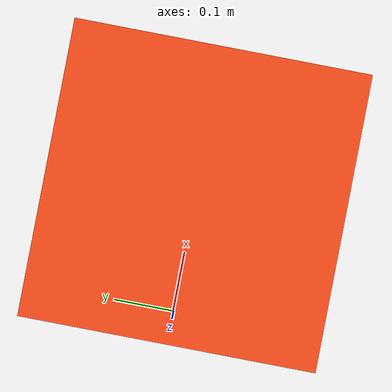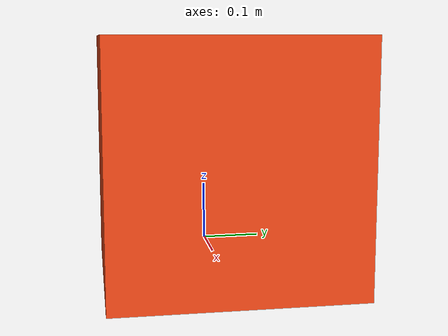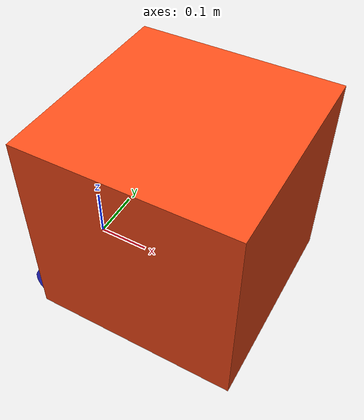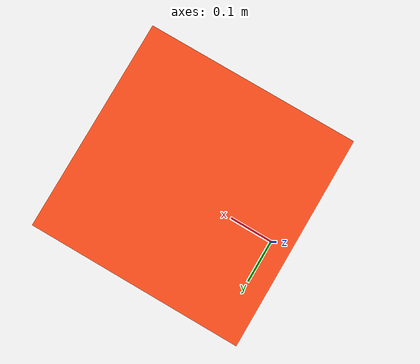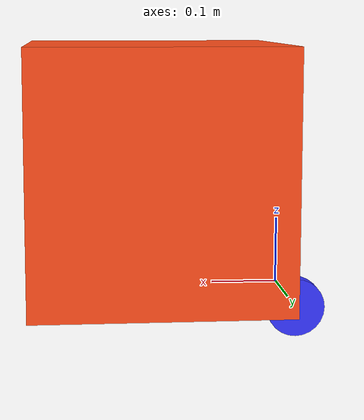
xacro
<?xml version="1.0"?>
<robot xmlns:xacro="http://www.ros.org/wiki/xacro"  name="robot">

    <xacro:arg name="use_ros2_control" default="true"/>
    <xacro:arg name="sim_mode" default="false"/>

    <xacro:include filename="robot_core.xacro" />

    <xacro:if value="$(arg use_ros2_control)">
        <xacro:include filename="ros2_control.xacro" />
    </xacro:if>

</robot>

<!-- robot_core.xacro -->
<robot xmlns:xacro="http://www.ros.org/wiki/xacro" >

    <xacro:include filename="inertial_macros.xacro"/>

    <xacro:property name="chassis_length" value="0.38"/>
    <xacro:property name="chassis_width" value="0.38"/>
    <xacro:property name="chassis_height" value="0.38"/>
    <xacro:property name="chassis_mass" value="1.0"/>
    <xacro:property name="wheel_radius" value="0.041275"/>
    <xacro:property name="wheel_thickness" value="0.02413"/>
    <xacro:property name="wheel_mass" value="0.05"/>
    <xacro:property name="wheel_offset_x" value="0"/>
    <xacro:property name="wheel_inset_x" value="0.038"/>
    <xacro:property name="wheel_offset_y" value="${(chassis_width / 2) - wheel_inset_x}"/>
    <xacro:property name="wheel_offset_z" value="0.01"/>

    <material name="white">
        <color rgba="1 1 1 1" />
    </material>

    <material name="orange">
        <color rgba="1 0.3 0.1 1"/>
    </material>

    <material name="blue">
        <color rgba="0.2 0.2 1 1"/>
    </material>

    <material name="black">
        <color rgba="0 0 0 1"/>
    </material>

    <material name="red">
        <color rgba="1 0 0 1"/>
    </material>

    <!-- BASE LINK -->

    <link name="base_link">

    </link>

    <!-- BASE_FOOTPRINT LINK -->

    <joint name="base_footprint_joint" type="fixed">
        <parent link="base_link"/>
        <child link="base_footprint"/>
        <origin xyz="0 0 0" rpy="0 0 0"/>
    </joint>

    <link name="base_footprint">
    </link>

    <!-- CHASSIS LINK -->

    <joint name="chassis_joint" type="fixed">
        <parent link="base_link"/>
        <child link="chassis"/>
        <origin xyz="${-wheel_offset_x} 0 ${-wheel_offset_z}"/>
    </joint>

    <link name="chassis">
        <visual>
            <origin xyz="${chassis_length/2} 0 ${chassis_height/2}"/>
            <geometry>
                <box size="${chassis_length} ${chassis_width} ${chassis_height}"/>
            </geometry>
            <material name="orange"/>
        </visual>
        <collision>
            <origin xyz="${chassis_length/2} 0 ${chassis_height/2}"/>
            <geometry>
                <box size="${chassis_length} ${chassis_width} ${chassis_height}"/>
            </geometry>
        </collision>
        <xacro:inertial_box mass="0.5" x="${chassis_length}" y="${chassis_width}" z="${chassis_height}">
            <origin xyz="${chassis_length/2} 0 ${chassis_height/2}" rpy="0 0 0"/>
        </xacro:inertial_box>
    </link>

    <gazebo reference="chassis">
        <material>Gazebo/Orange</material>
    </gazebo>

    <!-- LEFT WHEEL LINK -->

    <joint name="left_wheel_joint" type="continuous">
        <parent link="base_link"/>
        <child link="left_wheel"/>
        <origin xyz="0 ${wheel_offset_y} 0" rpy="-${pi/2} 0 0" />
        <axis xyz="0 0 1"/>
    </joint>

    <link name="left_wheel">
        <visual>
            <geometry>
                <cylinder radius="${wheel_radius}" length="${wheel_thickness}"/>
            </geometry>
            <material name="blue"/>
        </visual>
        <collision>
            <geometry>
                <sphere radius="${wheel_radius}"/>
            </geometry>
        </collision>
        <xacro:inertial_cylinder mass="${wheel_mass}" length="${wheel_thickness}" radius="${wheel_radius}">
            <origin xyz="0 0 0" rpy="0 0 0"/>
        </xacro:inertial_cylinder>
    </link>

    <gazebo reference="left_wheel">
        <material>Gazebo/Blue</material>
    </gazebo>

    <!-- RIGHT WHEEL LINK -->

    <joint name="right_wheel_joint" type="continuous">
        <parent link="base_link"/>
        <child link="right_wheel"/>
        <origin xyz="0 ${-wheel_offset_y} 0" rpy="${pi/2} 0 0" />
        <axis xyz="0 0 -1"/>
    </joint>

    <link name="right_wheel">
        <visual>
            <geometry>
                <cylinder radius="${wheel_radius}" length="${wheel_thickness}"/>
            </geometry>
            <material name="blue"/>
        </visual>
        <collision>
            <geometry>
                <sphere radius="${wheel_radius}"/>
            </geometry>
        </collision>
        <xacro:inertial_cylinder mass="${wheel_mass}" length="${wheel_thickness}" radius="${wheel_radius}">
            <origin xyz="0 0 0" rpy="0 0 0"/>
        </xacro:inertial_cylinder>
    </link>

    <gazebo reference="right_wheel">
        <material>Gazebo/Blue</material>
    </gazebo>

</robot>
